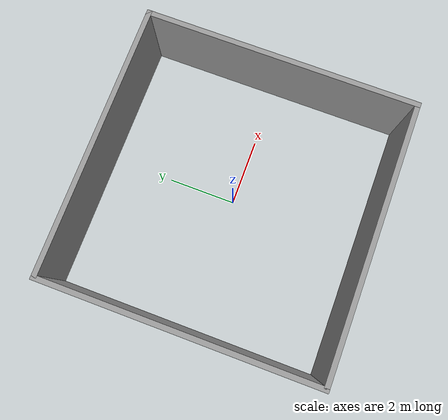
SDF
<?xml version='1.0'?>
<sdf version='1.6'>
  <model name='model'>
    <pose frame=''>-0.108073 -0.004307 0 0 -0 0</pose>

   <plugin name="gazebo_ros_state" filename="libgazebo_ros_state.so">
    </plugin>
    <link name='Wall_1'>
      <collision name='Wall_1_Collision'>
        <geometry>
          <box>
            <size>8 0.15 2.5</size>
          </box>
        </geometry>
        <pose frame=''>0 0 1.25 0 -0 0</pose>
      </collision>
      <visual name='Wall_1_Visual'>
        <pose frame=''>0 0 1.25 0 -0 0</pose>
        <geometry>
          <box>
            <size>8 0.15 2.5</size>
          </box>
        </geometry>
        <material>
          <script>
            <uri>file://media/materials/scripts/gazebo.material</uri>
            <name>Gazebo/Grey</name>
          </script>
          <ambient>1 1 1 1</ambient>
        </material>
        <meta>
          <layer>0</layer>
        </meta>
      </visual>
      <pose frame=''>-3.925 -0 0 0 -0 -1.5708</pose>
    </link>
    <link name='Wall_2'>
      <collision name='Wall_2_Collision'>
        <geometry>
          <box>
            <size>8 0.15 2.5</size>
          </box>
        </geometry>
        <pose frame=''>0 0 1.25 0 -0 0</pose>
      </collision>
      <visual name='Wall_2_Visual'>
        <pose frame=''>0 0 1.25 0 -0 0</pose>
        <geometry>
          <box>
            <size>8 0.15 2.5</size>
          </box>
        </geometry>
        <material>
          <script>
            <uri>file://media/materials/scripts/gazebo.material</uri>
            <name>Gazebo/Grey</name>
          </script>
          <ambient>1 1 1 1</ambient>
        </material>
        <meta>
          <layer>0</layer>
        </meta>
      </visual>
      <pose frame=''>0 3.925 0 0 -0 0</pose>
    </link>
    <link name='Wall_3'>
      <collision name='Wall_3_Collision'>
        <geometry>
          <box>
            <size>8 0.15 2.5</size>
          </box>
        </geometry>
        <pose frame=''>0 0 1.25 0 -0 0</pose>
      </collision>
      <visual name='Wall_3_Visual'>
        <pose frame=''>0 0 1.25 0 -0 0</pose>
        <geometry>
          <box>
            <size>8 0.15 2.5</size>
          </box>
        </geometry>
        <material>
          <script>
            <uri>file://media/materials/scripts/gazebo.material</uri>
            <name>Gazebo/Grey</name>
          </script>
          <ambient>1 1 1 1</ambient>
        </material>
        <meta>
          <layer>0</layer>
        </meta>
      </visual>
      <pose frame=''>3.925 -0 0 0 -0 -1.5708</pose>
    </link>
    <link name='Wall_4'>
      <collision name='Wall_4_Collision'>
        <geometry>
          <box>
            <size>8 0.15 2.5</size>
          </box>
        </geometry>
        <pose frame=''>0 0 1.25 0 -0 0</pose>
      </collision>
      <visual name='Wall_4_Visual'>
        <pose frame=''>0 0 1.25 0 -0 0</pose>
        <geometry>
          <box>
            <size>8 0.15 2.5</size>
          </box>
        </geometry>
        <material>
          <script>
            <uri>file://media/materials/scripts/gazebo.material</uri>
            <name>Gazebo/Grey</name>
          </script>
          <ambient>1 1 1 1</ambient>
        </material>
        <meta>
          <layer>0</layer>
        </meta>
      </visual>
      <pose frame=''>0 -3.925 0 0 -0 3.14159</pose>
    </link>
    <static>1</static>
  </model>
</sdf>
